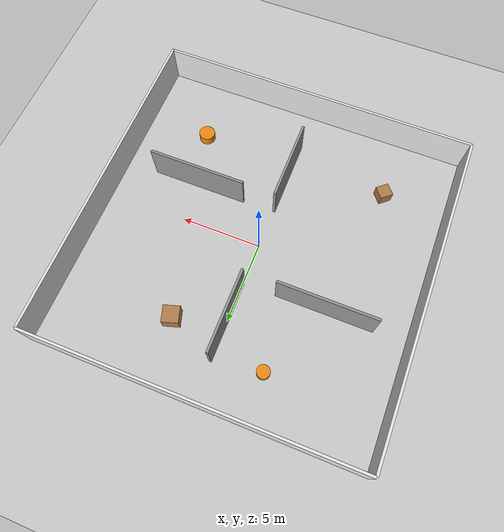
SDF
<?xml version="1.0" ?>
<sdf version="1.6">
  <world name="exploration_world">
    <!-- Physics settings -->
    <physics type="ode">
      <max_step_size>0.001</max_step_size>
      <real_time_factor>1</real_time_factor>
      <real_time_update_rate>1000</real_time_update_rate>
    </physics>

    <!-- Lighting -->
    <light name="sun" type="directional">
      <cast_shadows>true</cast_shadows>
      <pose>0 0 10 0 0 0</pose>
      <diffuse>0.8 0.8 0.8 1</diffuse>
      <specular>0.2 0.2 0.2 1</specular>
      <attenuation>
        <range>1000</range>
        <constant>0.9</constant>
        <linear>0.01</linear>
        <quadratic>0.001</quadratic>
      </attenuation>
      <direction>-0.5 0.1 -0.9</direction>
    </light>

    <!-- Ground plane -->
    <model name="ground_plane">
      <static>true</static>
      <link name="link">
        <collision name="collision">
          <geometry>
            <plane>
              <normal>0 0 1</normal>
              <size>50 50</size>
            </plane>
          </geometry>
          <surface>
            <friction>
              <ode>
                <mu>100</mu>
                <mu2>50</mu2>
              </ode>
            </friction>
          </surface>
        </collision>
        <visual name="visual">
          <cast_shadows>false</cast_shadows>
          <geometry>
            <plane>
              <normal>0 0 1</normal>
              <size>50 50</size>
            </plane>
          </geometry>
          <material>
            <script>
              <uri>file://media/materials/scripts/gazebo.material</uri>
              <name>Gazebo/Grey</name>
            </script>
          </material>
        </visual>
      </link>
    </model>

    <!-- Outer walls -->
    <model name="outer_wall_north">
      <static>true</static>
      <pose>0 10 1.25 0 0 0</pose>
      <link name="link">
        <collision name="collision">
          <geometry><box><size>20 0.15 2.5</size></box></geometry>
        </collision>
        <visual name="visual">
          <geometry><box><size>20 0.15 2.5</size></box></geometry>
          <material><script><uri>file://media/materials/scripts/gazebo.material</uri><name>Gazebo/White</name></script></material>
        </visual>
      </link>
    </model>

    <model name="outer_wall_south">
      <static>true</static>
      <pose>0 -10 1.25 0 0 0</pose>
      <link name="link">
        <collision name="collision">
          <geometry><box><size>20 0.15 2.5</size></box></geometry>
        </collision>
        <visual name="visual">
          <geometry><box><size>20 0.15 2.5</size></box></geometry>
          <material><script><uri>file://media/materials/scripts/gazebo.material</uri><name>Gazebo/White</name></script></material>
        </visual>
      </link>
    </model>

    <model name="outer_wall_east">
      <static>true</static>
      <pose>10 0 1.25 0 0 1.5708</pose>
      <link name="link">
        <collision name="collision">
          <geometry><box><size>20 0.15 2.5</size></box></geometry>
        </collision>
        <visual name="visual">
          <geometry><box><size>20 0.15 2.5</size></box></geometry>
          <material><script><uri>file://media/materials/scripts/gazebo.material</uri><name>Gazebo/White</name></script></material>
        </visual>
      </link>
    </model>

    <model name="outer_wall_west">
      <static>true</static>
      <pose>-10 0 1.25 0 0 1.5708</pose>
      <link name="link">
        <collision name="collision">
          <geometry><box><size>20 0.15 2.5</size></box></geometry>
        </collision>
        <visual name="visual">
          <geometry><box><size>20 0.15 2.5</size></box></geometry>
          <material><script><uri>file://media/materials/scripts/gazebo.material</uri><name>Gazebo/White</name></script></material>
        </visual>
      </link>
    </model>

    <!-- Internal walls creating rooms -->
    <model name="wall_1">
      <static>true</static>
      <pose>-5 2.5 1.25 0 0 0</pose>
      <link name="link">
        <collision name="collision">
          <geometry><box><size>6 0.15 2.5</size></box></geometry>
        </collision>
        <visual name="visual">
          <geometry><box><size>6 0.15 2.5</size></box></geometry>
          <material><script><uri>file://media/materials/scripts/gazebo.material</uri><name>Gazebo/Grey</name></script></material>
        </visual>
      </link>
    </model>

    <model name="wall_2">
      <static>true</static>
      <pose>0 5 1.25 0 0 1.5708</pose>
      <link name="link">
        <collision name="collision">
          <geometry><box><size>5 0.15 2.5</size></box></geometry>
        </collision>
        <visual name="visual">
          <geometry><box><size>5 0.15 2.5</size></box></geometry>
          <material><script><uri>file://media/materials/scripts/gazebo.material</uri><name>Gazebo/Grey</name></script></material>
        </visual>
      </link>
    </model>

    <model name="wall_3">
      <static>true</static>
      <pose>5 -2.5 1.25 0 0 0</pose>
      <link name="link">
        <collision name="collision">
          <geometry><box><size>6 0.15 2.5</size></box></geometry>
        </collision>
        <visual name="visual">
          <geometry><box><size>6 0.15 2.5</size></box></geometry>
          <material><script><uri>file://media/materials/scripts/gazebo.material</uri><name>Gazebo/Grey</name></script></material>
        </visual>
      </link>
    </model>

    <model name="wall_4">
      <static>true</static>
      <pose>0 -5 1.25 0 0 1.5708</pose>
      <link name="link">
        <collision name="collision">
          <geometry><box><size>5 0.15 2.5</size></box></geometry>
        </collision>
        <visual name="visual">
          <geometry><box><size>5 0.15 2.5</size></box></geometry>
          <material><script><uri>file://media/materials/scripts/gazebo.material</uri><name>Gazebo/Grey</name></script></material>
        </visual>
      </link>
    </model>

    <!-- Obstacles (boxes/rocks) scattered around -->
    <model name="obstacle_1">
      <static>true</static>
      <pose>3 6 0.5 0 0 0.3</pose>
      <link name="link">
        <collision name="collision">
          <geometry><box><size>1 1 1</size></box></geometry>
        </collision>
        <visual name="visual">
          <geometry><box><size>1 1 1</size></box></geometry>
          <material><script><uri>file://media/materials/scripts/gazebo.material</uri><name>Gazebo/Wood</name></script></material>
        </visual>
      </link>
    </model>

    <model name="obstacle_2">
      <static>true</static>
      <pose>-6 -6 0.4 0 0 0.7</pose>
      <link name="link">
        <collision name="collision">
          <geometry><box><size>0.8 0.8 0.8</size></box></geometry>
        </collision>
        <visual name="visual">
          <geometry><box><size>0.8 0.8 0.8</size></box></geometry>
          <material><script><uri>file://media/materials/scripts/gazebo.material</uri><name>Gazebo/Wood</name></script></material>
        </visual>
      </link>
    </model>

    <model name="obstacle_3">
      <static>true</static>
      <pose>6 -6 0.3 0 0 0</pose>
      <link name="link">
        <collision name="collision">
          <geometry><cylinder><radius>0.5</radius><length>0.6</length></cylinder></geometry>
        </collision>
        <visual name="visual">
          <geometry><cylinder><radius>0.5</radius><length>0.6</length></cylinder></geometry>
          <material><script><uri>file://media/materials/scripts/gazebo.material</uri><name>Gazebo/Orange</name></script></material>
        </visual>
      </link>
    </model>

    <model name="obstacle_4">
      <static>true</static>
      <pose>-3 7 0.25 0 0 0</pose>
      <link name="link">
        <collision name="collision">
          <geometry><cylinder><radius>0.4</radius><length>0.5</length></cylinder></geometry>
        </collision>
        <visual name="visual">
          <geometry><cylinder><radius>0.4</radius><length>0.5</length></cylinder></geometry>
          <material><script><uri>file://media/materials/scripts/gazebo.material</uri><name>Gazebo/Orange</name></script></material>
        </visual>
      </link>
    </model>

    <!-- Scene settings -->
    <scene>
      <ambient>0.4 0.4 0.4 1</ambient>
      <background>0.7 0.7 0.7 1</background>
      <shadows>true</shadows>
    </scene>

    <gui fullscreen="0">
      <camera name="user_camera">
        <pose>0 -25 20 0 0.7 1.57</pose>
        <view_controller>orbit</view_controller>
      </camera>
    </gui>

  </world>
</sdf>
